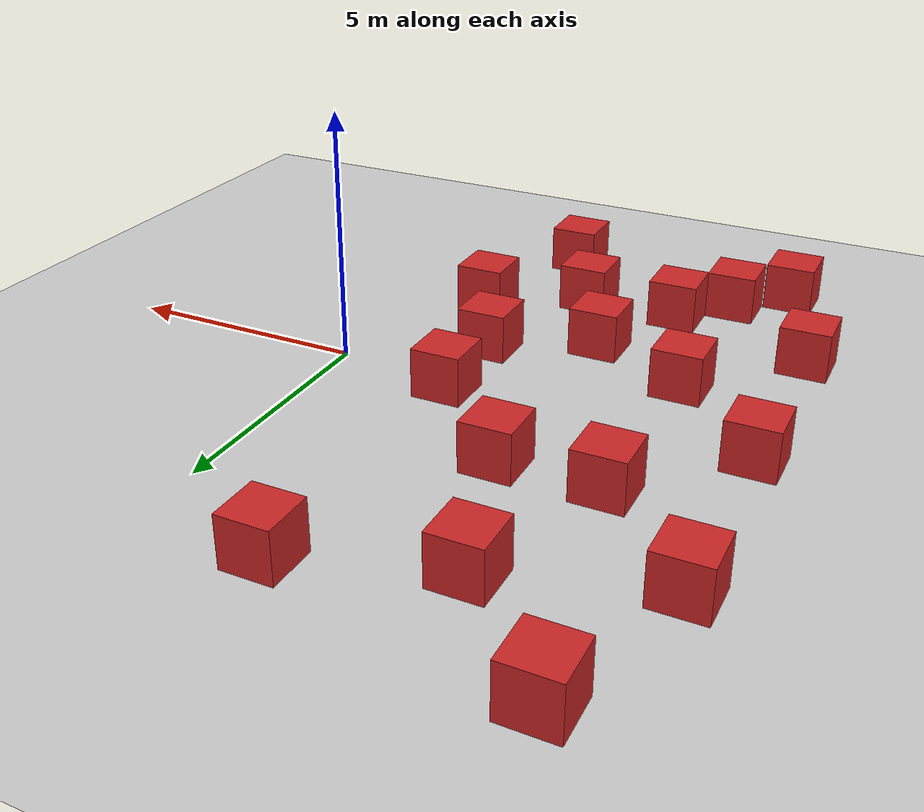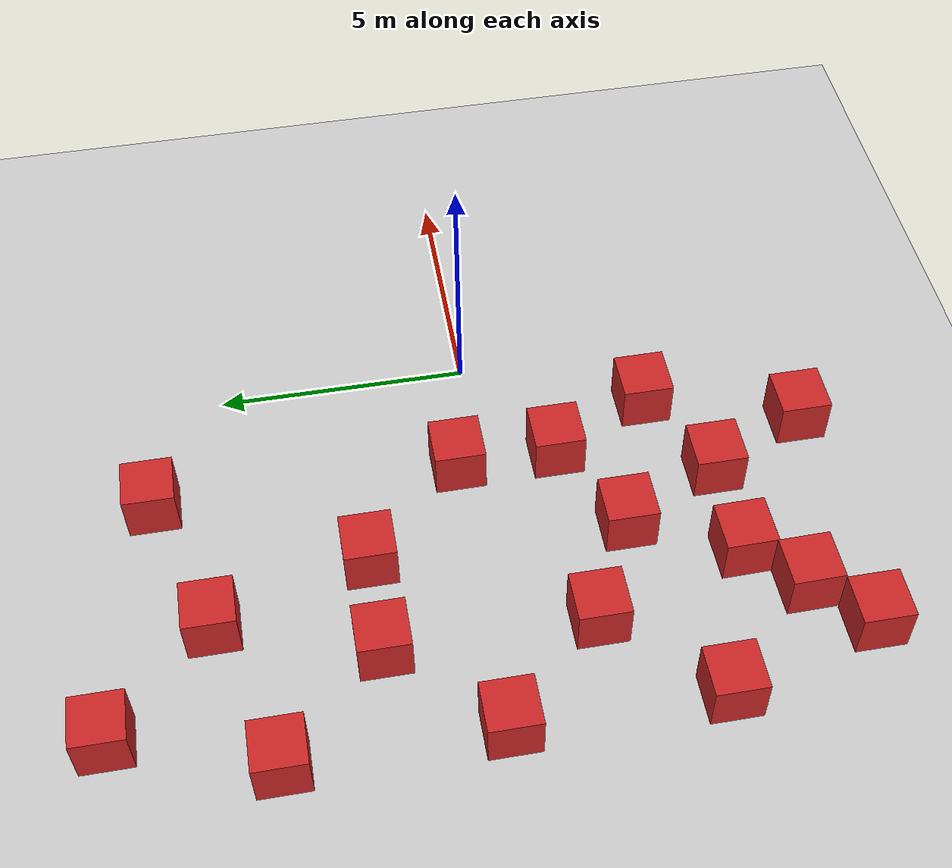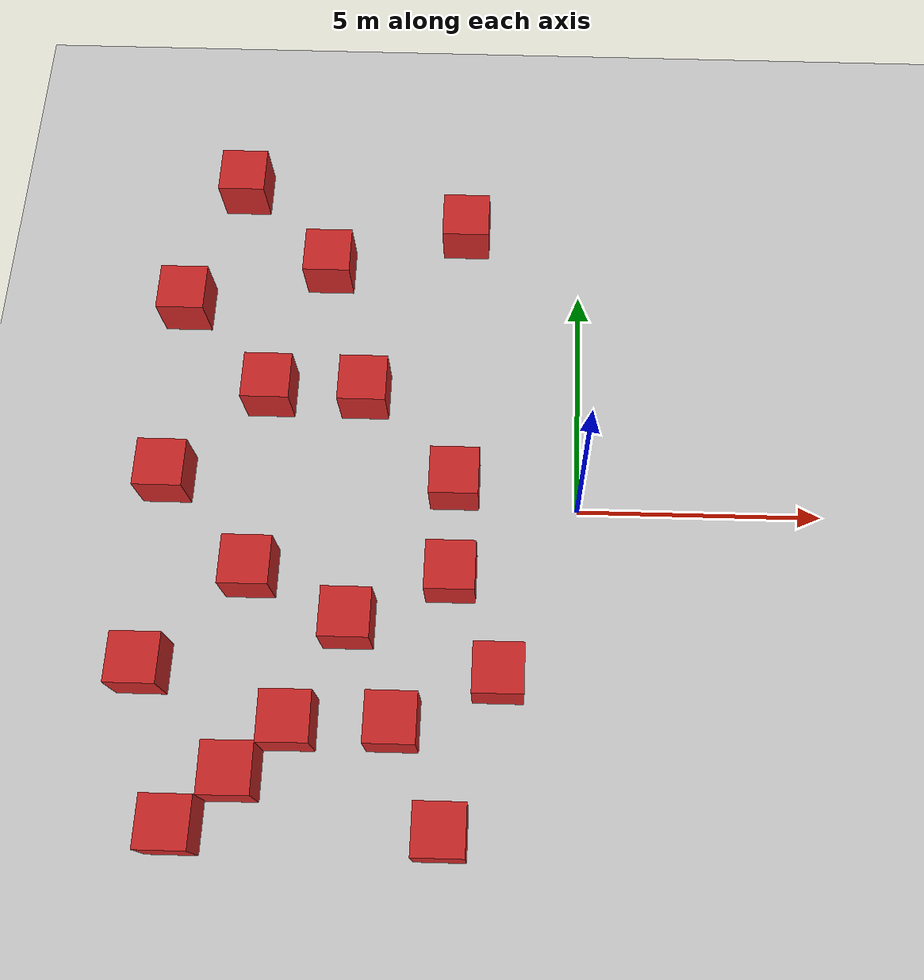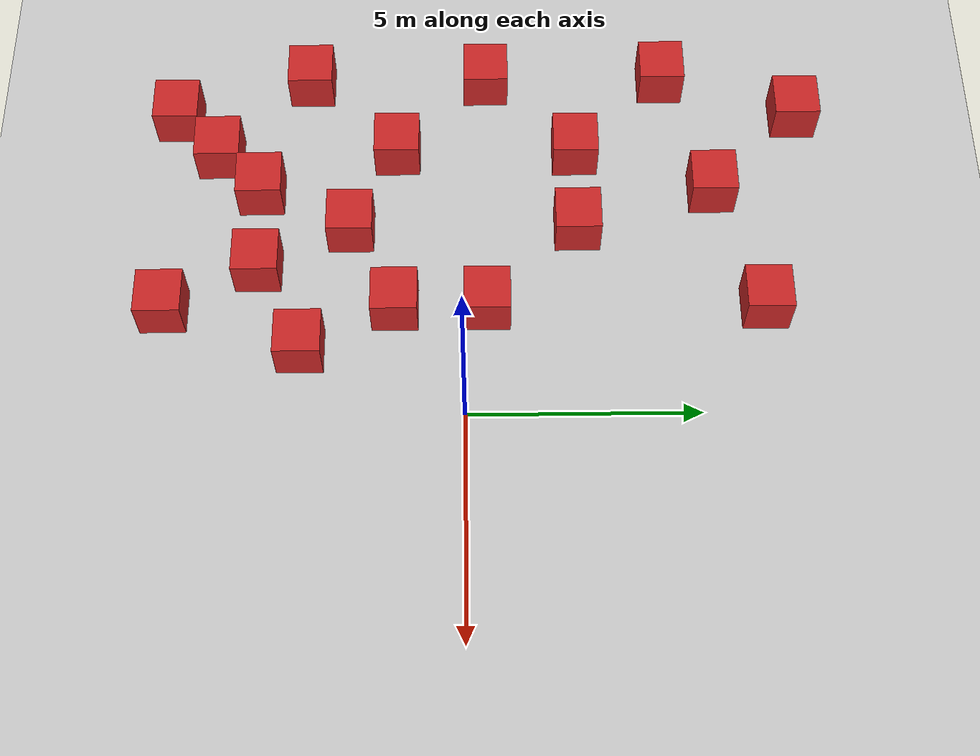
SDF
<sdf version="1.7">
 <world name="default">
  <model name="ground_plane">
   <static>1</static>
   <link name="link">
    <collision name="collision">
     <geometry><plane><normal>0 0 1</normal><size>100 100</size></plane></geometry>
     <surface><friction><ode><mu>100</mu><mu2>50</mu2></ode></friction></surface>
    </collision>
    <visual name="visual">
     <cast_shadows>0</cast_shadows>
     <geometry><plane><normal>0 0 1</normal><size>100 100</size></plane></geometry>
     <material>
      <script><uri>file://media/materials/scripts/gazebo.material</uri><name>Gazebo/Grey</name></script>
     </material>
    </visual>
   </link>
  </model>
  <model name="unit_box_red_0_clone_10">
   <link name="link">
    <inertial>
     <mass>1</mass>
     <inertia>
      <ixx>0.166667</ixx>
      <ixy>0</ixy>
      <ixz>0</ixz>
      <iyy>0.166667</iyy>
      <iyz>0</iyz>
      <izz>0.166667</izz>
     </inertia>
    </inertial>
    <visual name="visual">
     <geometry><box><size>1 1 1</size></box></geometry>
     <material>
      <script><name>Gazebo/Red</name><uri>file://media/materials/scripts/gazebo.material</uri></script>
      <shader type="pixel"><normal_map>__default__</normal_map></shader>
      <ambient>1 0 0 1</ambient>
      <diffuse>1 0 0 1</diffuse>
      <specular>1 0 0 1</specular>
      <emissive>1 0 0 1</emissive>
     </material>
    </visual>
    <collision name="collision">
     <geometry><box><size>1 1 1</size></box></geometry>
     <surface>
      <friction>
       <ode><mu>1</mu><mu2>1</mu2><fdir1>0 0 0</fdir1><slip1>0</slip1><slip2>0</slip2></ode>
       <torsional>
        <coefficient>1</coefficient>
        <patch_radius>0</patch_radius>
        <surface_radius>0</surface_radius>
        <use_patch_radius>1</use_patch_radius>
        <ode><slip>0</slip></ode>
       </torsional>
      </friction>
      <bounce><restitution_coefficient>0</restitution_coefficient><threshold>1e+06</threshold></bounce>
      <contact>
       <collide_without_contact>0</collide_without_contact>
       <collide_without_contact_bitmask>1</collide_without_contact_bitmask>
       <collide_bitmask>1</collide_bitmask>
       <ode>
        <soft_cfm>0</soft_cfm>
        <soft_erp>0.2</soft_erp>
        <kp>1e+13</kp>
        <kd>1</kd>
        <max_vel>0.01</max_vel>
        <min_depth>0</min_depth>
       </ode>
       <bullet>
        <split_impulse>1</split_impulse>
        <split_impulse_penetration_threshold>-0.01</split_impulse_penetration_threshold>
        <soft_cfm>0</soft_cfm>
        <soft_erp>0.2</soft_erp>
        <kp>1e+13</kp>
        <kd>1</kd>
       </bullet>
      </contact>
     </surface>
    </collision>
   </link>
   <static>0</static>
   <pose>-2.52511 0.481594 0.499995 -1e-05 0 0.000645</pose>
  </model>
  <model name="unit_box_red_0_clone_11">
   <link name="link">
    <inertial>
     <mass>1</mass>
     <inertia>
      <ixx>0.166667</ixx>
      <ixy>0</ixy>
      <ixz>0</ixz>
      <iyy>0.166667</iyy>
      <iyz>0</iyz>
      <izz>0.166667</izz>
     </inertia>
    </inertial>
    <visual name="visual">
     <geometry><box><size>1 1 1</size></box></geometry>
     <material>
      <script><name>Gazebo/Red</name><uri>file://media/materials/scripts/gazebo.material</uri></script>
      <shader type="pixel"><normal_map>__default__</normal_map></shader>
      <ambient>1 0 0 1</ambient>
      <diffuse>1 0 0 1</diffuse>
      <specular>1 0 0 1</specular>
      <emissive>1 0 0 1</emissive>
     </material>
    </visual>
    <collision name="collision">
     <geometry><box><size>1 1 1</size></box></geometry>
     <surface>
      <friction>
       <ode><mu>1</mu><mu2>1</mu2><fdir1>0 0 0</fdir1><slip1>0</slip1><slip2>0</slip2></ode>
       <torsional>
        <coefficient>1</coefficient>
        <patch_radius>0</patch_radius>
        <surface_radius>0</surface_radius>
        <use_patch_radius>1</use_patch_radius>
        <ode><slip>0</slip></ode>
       </torsional>
      </friction>
      <bounce><restitution_coefficient>0</restitution_coefficient><threshold>1e+06</threshold></bounce>
      <contact>
       <collide_without_contact>0</collide_without_contact>
       <collide_without_contact_bitmask>1</collide_without_contact_bitmask>
       <collide_bitmask>1</collide_bitmask>
       <ode>
        <soft_cfm>0</soft_cfm>
        <soft_erp>0.2</soft_erp>
        <kp>1e+13</kp>
        <kd>1</kd>
        <max_vel>0.01</max_vel>
        <min_depth>0</min_depth>
       </ode>
       <bullet>
        <split_impulse>1</split_impulse>
        <split_impulse_penetration_threshold>-0.01</split_impulse_penetration_threshold>
        <soft_cfm>0</soft_cfm>
        <soft_erp>0.2</soft_erp>
        <kp>1e+13</kp>
        <kd>1</kd>
       </bullet>
      </contact>
     </surface>
    </collision>
   </link>
   <static>0</static>
   <pose>-2.52086 -1.50531 0.499995 0 1e-05 0</pose>
  </model>
  <model name="unit_box_red_0_clone_12">
   <link name="link">
    <inertial>
     <mass>1</mass>
     <inertia>
      <ixx>0.166667</ixx>
      <ixy>0</ixy>
      <ixz>0</ixz>
      <iyy>0.166667</iyy>
      <iyz>0</iyz>
      <izz>0.166667</izz>
     </inertia>
    </inertial>
    <visual name="visual">
     <geometry><box><size>1 1 1</size></box></geometry>
     <material>
      <script><name>Gazebo/Red</name><uri>file://media/materials/scripts/gazebo.material</uri></script>
      <shader type="pixel"><normal_map>__default__</normal_map></shader>
      <ambient>1 0 0 1</ambient>
      <diffuse>1 0 0 1</diffuse>
      <specular>1 0 0 1</specular>
      <emissive>1 0 0 1</emissive>
     </material>
    </visual>
    <collision name="collision">
     <geometry><box><size>1 1 1</size></box></geometry>
     <surface>
      <friction>
       <ode><mu>1</mu><mu2>1</mu2><fdir1>0 0 0</fdir1><slip1>0</slip1><slip2>0</slip2></ode>
       <torsional>
        <coefficient>1</coefficient>
        <patch_radius>0</patch_radius>
        <surface_radius>0</surface_radius>
        <use_patch_radius>1</use_patch_radius>
        <ode><slip>0</slip></ode>
       </torsional>
      </friction>
      <bounce><restitution_coefficient>0</restitution_coefficient><threshold>1e+06</threshold></bounce>
      <contact>
       <collide_without_contact>0</collide_without_contact>
       <collide_without_contact_bitmask>1</collide_without_contact_bitmask>
       <collide_bitmask>1</collide_bitmask>
       <ode>
        <soft_cfm>0</soft_cfm>
        <soft_erp>0.2</soft_erp>
        <kp>1e+13</kp>
        <kd>1</kd>
        <max_vel>0.01</max_vel>
        <min_depth>0</min_depth>
       </ode>
       <bullet>
        <split_impulse>1</split_impulse>
        <split_impulse_penetration_threshold>-0.01</split_impulse_penetration_threshold>
        <soft_cfm>0</soft_cfm>
        <soft_erp>0.2</soft_erp>
        <kp>1e+13</kp>
        <kd>1</kd>
       </bullet>
      </contact>
     </surface>
    </collision>
   </link>
   <static>0</static>
   <pose>-1.51768 -3.51166 0.499995 0 1e-05 0</pose>
  </model>
  <model name="unit_box_red_0_clone_16_clone_0">
   <link name="link">
    <inertial>
     <mass>1</mass>
     <inertia>
      <ixx>0.166667</ixx>
      <ixy>0</ixy>
      <ixz>0</ixz>
      <iyy>0.166667</iyy>
      <iyz>0</iyz>
      <izz>0.166667</izz>
     </inertia>
    </inertial>
    <visual name="visual">
     <geometry><box><size>1 1 1</size></box></geometry>
     <material>
      <script><name>Gazebo/Red</name><uri>file://media/materials/scripts/gazebo.material</uri></script>
      <shader type="pixel"><normal_map>__default__</normal_map></shader>
      <ambient>1 0 0 1</ambient>
      <diffuse>1 0 0 1</diffuse>
      <specular>1 0 0 1</specular>
      <emissive>1 0 0 1</emissive>
     </material>
    </visual>
    <collision name="collision">
     <geometry><box><size>1 1 1</size></box></geometry>
     <surface>
      <friction>
       <ode><mu>1</mu><mu2>1</mu2><fdir1>0 0 0</fdir1><slip1>0</slip1><slip2>0</slip2></ode>
       <torsional>
        <coefficient>1</coefficient>
        <patch_radius>0</patch_radius>
        <surface_radius>0</surface_radius>
        <use_patch_radius>1</use_patch_radius>
        <ode><slip>0</slip></ode>
       </torsional>
      </friction>
      <bounce><restitution_coefficient>0</restitution_coefficient><threshold>1e+06</threshold></bounce>
      <contact>
       <collide_without_contact>0</collide_without_contact>
       <collide_without_contact_bitmask>1</collide_without_contact_bitmask>
       <collide_bitmask>1</collide_bitmask>
       <ode>
        <soft_cfm>0</soft_cfm>
        <soft_erp>0.2</soft_erp>
        <kp>1e+13</kp>
        <kd>1</kd>
        <max_vel>0.01</max_vel>
        <min_depth>0</min_depth>
       </ode>
       <bullet>
        <split_impulse>1</split_impulse>
        <split_impulse_penetration_threshold>-0.01</split_impulse_penetration_threshold>
        <soft_cfm>0</soft_cfm>
        <soft_erp>0.2</soft_erp>
        <kp>1e+13</kp>
        <kd>1</kd>
       </bullet>
      </contact>
     </surface>
    </collision>
   </link>
   <static>0</static>
   <pose>-2.50935 6.48435 0.499995 0 1e-05 0</pose>
  </model>
  <model name="unit_box_red_0_clone_16_clone_1">
   <link name="link">
    <inertial>
     <mass>1</mass>
     <inertia>
      <ixx>0.166667</ixx>
      <ixy>0</ixy>
      <ixz>0</ixz>
      <iyy>0.166667</iyy>
      <iyz>0</iyz>
      <izz>0.166667</izz>
     </inertia>
    </inertial>
    <visual name="visual">
     <geometry><box><size>1 1 1</size></box></geometry>
     <material>
      <script><name>Gazebo/Red</name><uri>file://media/materials/scripts/gazebo.material</uri></script>
      <shader type="pixel"><normal_map>__default__</normal_map></shader>
      <ambient>1 0 0 1</ambient>
      <diffuse>1 0 0 1</diffuse>
      <specular>1 0 0 1</specular>
      <emissive>1 0 0 1</emissive>
     </material>
    </visual>
    <collision name="collision">
     <geometry><box><size>1 1 1</size></box></geometry>
     <surface>
      <friction>
       <ode><mu>1</mu><mu2>1</mu2><fdir1>0 0 0</fdir1><slip1>0</slip1><slip2>0</slip2></ode>
       <torsional>
        <coefficient>1</coefficient>
        <patch_radius>0</patch_radius>
        <surface_radius>0</surface_radius>
        <use_patch_radius>1</use_patch_radius>
        <ode><slip>0</slip></ode>
       </torsional>
      </friction>
      <bounce><restitution_coefficient>0</restitution_coefficient><threshold>1e+06</threshold></bounce>
      <contact>
       <collide_without_contact>0</collide_without_contact>
       <collide_without_contact_bitmask>1</collide_without_contact_bitmask>
       <collide_bitmask>1</collide_bitmask>
       <ode>
        <soft_cfm>0</soft_cfm>
        <soft_erp>0.2</soft_erp>
        <kp>1e+13</kp>
        <kd>1</kd>
        <max_vel>0.01</max_vel>
        <min_depth>0</min_depth>
       </ode>
       <bullet>
        <split_impulse>1</split_impulse>
        <split_impulse_penetration_threshold>-0.01</split_impulse_penetration_threshold>
        <soft_cfm>0</soft_cfm>
        <soft_erp>0.2</soft_erp>
        <kp>1e+13</kp>
        <kd>1</kd>
       </bullet>
      </contact>
     </surface>
    </collision>
   </link>
   <static>0</static>
   <pose>-4.50697 2.48913 0.499995 0 1e-05 0</pose>
  </model>
  <model name="unit_box_red_0_clone_16_clone_2">
   <link name="link">
    <inertial>
     <mass>1</mass>
     <inertia>
      <ixx>0.166667</ixx>
      <ixy>0</ixy>
      <ixz>0</ixz>
      <iyy>0.166667</iyy>
      <iyz>0</iyz>
      <izz>0.166667</izz>
     </inertia>
    </inertial>
    <visual name="visual">
     <geometry><box><size>1 1 1</size></box></geometry>
     <material>
      <script><name>Gazebo/Red</name><uri>file://media/materials/scripts/gazebo.material</uri></script>
      <shader type="pixel"><normal_map>__default__</normal_map></shader>
      <ambient>1 0 0 1</ambient>
      <diffuse>1 0 0 1</diffuse>
      <specular>1 0 0 1</specular>
      <emissive>1 0 0 1</emissive>
     </material>
    </visual>
    <collision name="collision">
     <geometry><box><size>1 1 1</size></box></geometry>
     <surface>
      <friction>
       <ode><mu>1</mu><mu2>1</mu2><fdir1>0 0 0</fdir1><slip1>0</slip1><slip2>0</slip2></ode>
       <torsional>
        <coefficient>1</coefficient>
        <patch_radius>0</patch_radius>
        <surface_radius>0</surface_radius>
        <use_patch_radius>1</use_patch_radius>
        <ode><slip>0</slip></ode>
       </torsional>
      </friction>
      <bounce><restitution_coefficient>0</restitution_coefficient><threshold>1e+06</threshold></bounce>
      <contact>
       <collide_without_contact>0</collide_without_contact>
       <collide_without_contact_bitmask>1</collide_without_contact_bitmask>
       <collide_bitmask>1</collide_bitmask>
       <ode>
        <soft_cfm>0</soft_cfm>
        <soft_erp>0.2</soft_erp>
        <kp>1e+13</kp>
        <kd>1</kd>
        <max_vel>0.01</max_vel>
        <min_depth>0</min_depth>
       </ode>
       <bullet>
        <split_impulse>1</split_impulse>
        <split_impulse_penetration_threshold>-0.01</split_impulse_penetration_threshold>
        <soft_cfm>0</soft_cfm>
        <soft_erp>0.2</soft_erp>
        <kp>1e+13</kp>
        <kd>1</kd>
       </bullet>
      </contact>
     </surface>
    </collision>
   </link>
   <static>0</static>
   <pose>-4.50697 -2.5049 0.499995 0 1e-05 0</pose>
  </model>
  <model name="unit_box_red_0_clone_16_clone_12">
   <link name="link">
    <inertial>
     <mass>1</mass>
     <inertia>
      <ixx>0.166667</ixx>
      <ixy>0</ixy>
      <ixz>0</ixz>
      <iyy>0.166667</iyy>
      <iyz>0</iyz>
      <izz>0.166667</izz>
     </inertia>
    </inertial>
    <visual name="visual">
     <geometry><box><size>1 1 1</size></box></geometry>
     <material>
      <script><name>Gazebo/Red</name><uri>file://media/materials/scripts/gazebo.material</uri></script>
      <shader type="pixel"><normal_map>__default__</normal_map></shader>
      <ambient>1 0 0 1</ambient>
      <diffuse>1 0 0 1</diffuse>
      <specular>1 0 0 1</specular>
      <emissive>1 0 0 1</emissive>
     </material>
    </visual>
    <collision name="collision">
     <geometry><box><size>1 1 1</size></box></geometry>
     <surface>
      <friction>
       <ode><mu>1</mu><mu2>1</mu2><fdir1>0 0 0</fdir1><slip1>0</slip1><slip2>0</slip2></ode>
       <torsional>
        <coefficient>1</coefficient>
        <patch_radius>0</patch_radius>
        <surface_radius>0</surface_radius>
        <use_patch_radius>1</use_patch_radius>
        <ode><slip>0</slip></ode>
       </torsional>
      </friction>
      <bounce><restitution_coefficient>0</restitution_coefficient><threshold>1e+06</threshold></bounce>
      <contact>
       <collide_without_contact>0</collide_without_contact>
       <collide_without_contact_bitmask>1</collide_without_contact_bitmask>
       <collide_bitmask>1</collide_bitmask>
       <ode>
        <soft_cfm>0</soft_cfm>
        <soft_erp>0.2</soft_erp>
        <kp>1e+13</kp>
        <kd>1</kd>
        <max_vel>0.01</max_vel>
        <min_depth>0</min_depth>
       </ode>
       <bullet>
        <split_impulse>1</split_impulse>
        <split_impulse_penetration_threshold>-0.01</split_impulse_penetration_threshold>
        <soft_cfm>0</soft_cfm>
        <soft_erp>0.2</soft_erp>
        <kp>1e+13</kp>
        <kd>1</kd>
       </bullet>
      </contact>
     </surface>
    </collision>
   </link>
   <static>0</static>
   <pose>-2.50936 -6.50013 0.499995 0 1e-05 0</pose>
  </model>
  <model name="unit_box_red_0_clone_16_clone_13">
   <link name="link">
    <inertial>
     <mass>1</mass>
     <inertia>
      <ixx>0.166667</ixx>
      <ixy>0</ixy>
      <ixz>0</ixz>
      <iyy>0.166667</iyy>
      <iyz>0</iyz>
      <izz>0.166667</izz>
     </inertia>
    </inertial>
    <visual name="visual">
     <geometry><box><size>1 1 1</size></box></geometry>
     <material>
      <script><name>Gazebo/Red</name><uri>file://media/materials/scripts/gazebo.material</uri></script>
      <shader type="pixel"><normal_map>__default__</normal_map></shader>
      <ambient>1 0 0 1</ambient>
      <diffuse>1 0 0 1</diffuse>
      <specular>1 0 0 1</specular>
      <emissive>1 0 0 1</emissive>
     </material>
    </visual>
    <collision name="collision">
     <geometry><box><size>1 1 1</size></box></geometry>
     <surface>
      <friction>
       <ode><mu>1</mu><mu2>1</mu2><fdir1>0 0 0</fdir1><slip1>0</slip1><slip2>0</slip2></ode>
       <torsional>
        <coefficient>1</coefficient>
        <patch_radius>0</patch_radius>
        <surface_radius>0</surface_radius>
        <use_patch_radius>1</use_patch_radius>
        <ode><slip>0</slip></ode>
       </torsional>
      </friction>
      <bounce><restitution_coefficient>0</restitution_coefficient><threshold>1e+06</threshold></bounce>
      <contact>
       <collide_without_contact>0</collide_without_contact>
       <collide_without_contact_bitmask>1</collide_without_contact_bitmask>
       <collide_bitmask>1</collide_bitmask>
       <ode>
        <soft_cfm>0</soft_cfm>
        <soft_erp>0.2</soft_erp>
        <kp>1e+13</kp>
        <kd>1</kd>
        <max_vel>0.01</max_vel>
        <min_depth>0</min_depth>
       </ode>
       <bullet>
        <split_impulse>1</split_impulse>
        <split_impulse_penetration_threshold>-0.01</split_impulse_penetration_threshold>
        <soft_cfm>0</soft_cfm>
        <soft_erp>0.2</soft_erp>
        <kp>1e+13</kp>
        <kd>1</kd>
       </bullet>
      </contact>
     </surface>
    </collision>
   </link>
   <static>0</static>
   <pose>-6.48143 -5.50789 0.499995 -0 -1e-05 0.0132</pose>
  </model>
  <model name="unit_box_red_0_clone_16_clone_14">
   <link name="link">
    <inertial>
     <mass>1</mass>
     <inertia>
      <ixx>0.166667</ixx>
      <ixy>0</ixy>
      <ixz>0</ixz>
      <iyy>0.166667</iyy>
      <iyz>0</iyz>
      <izz>0.166667</izz>
     </inertia>
    </inertial>
    <visual name="visual">
     <geometry><box><size>1 1 1</size></box></geometry>
     <material>
      <script><name>Gazebo/Red</name><uri>file://media/materials/scripts/gazebo.material</uri></script>
      <shader type="pixel"><normal_map>__default__</normal_map></shader>
      <ambient>1 0 0 1</ambient>
      <diffuse>1 0 0 1</diffuse>
      <specular>1 0 0 1</specular>
      <emissive>1 0 0 1</emissive>
     </material>
    </visual>
    <collision name="collision">
     <geometry><box><size>1 1 1</size></box></geometry>
     <surface>
      <friction>
       <ode><mu>1</mu><mu2>1</mu2><fdir1>0 0 0</fdir1><slip1>0</slip1><slip2>0</slip2></ode>
       <torsional>
        <coefficient>1</coefficient>
        <patch_radius>0</patch_radius>
        <surface_radius>0</surface_radius>
        <use_patch_radius>1</use_patch_radius>
        <ode><slip>0</slip></ode>
       </torsional>
      </friction>
      <bounce><restitution_coefficient>0</restitution_coefficient><threshold>1e+06</threshold></bounce>
      <contact>
       <collide_without_contact>0</collide_without_contact>
       <collide_without_contact_bitmask>1</collide_without_contact_bitmask>
       <collide_bitmask>1</collide_bitmask>
       <ode>
        <soft_cfm>0</soft_cfm>
        <soft_erp>0.2</soft_erp>
        <kp>1e+13</kp>
        <kd>1</kd>
        <max_vel>0.01</max_vel>
        <min_depth>0</min_depth>
       </ode>
       <bullet>
        <split_impulse>1</split_impulse>
        <split_impulse_penetration_threshold>-0.01</split_impulse_penetration_threshold>
        <soft_cfm>0</soft_cfm>
        <soft_erp>0.2</soft_erp>
        <kp>1e+13</kp>
        <kd>1</kd>
       </bullet>
      </contact>
     </surface>
    </collision>
   </link>
   <static>0</static>
   <pose>-6.53902 -1.5061 0.499995 0 1e-05 0</pose>
  </model>
  <model name="unit_box_red_0_clone_16_clone_15">
   <link name="link">
    <inertial>
     <mass>1</mass>
     <inertia>
      <ixx>0.166667</ixx>
      <ixy>0</ixy>
      <ixz>0</ixz>
      <iyy>0.166667</iyy>
      <iyz>0</iyz>
      <izz>0.166667</izz>
     </inertia>
    </inertial>
    <visual name="visual">
     <geometry><box><size>1 1 1</size></box></geometry>
     <material>
      <script><name>Gazebo/Red</name><uri>file://media/materials/scripts/gazebo.material</uri></script>
      <shader type="pixel"><normal_map>__default__</normal_map></shader>
      <ambient>1 0 0 1</ambient>
      <diffuse>1 0 0 1</diffuse>
      <specular>1 0 0 1</specular>
      <emissive>1 0 0 1</emissive>
     </material>
    </visual>
    <collision name="collision">
     <geometry><box><size>1 1 1</size></box></geometry>
     <surface>
      <friction>
       <ode><mu>1</mu><mu2>1</mu2><fdir1>0 0 0</fdir1><slip1>0</slip1><slip2>0</slip2></ode>
       <torsional>
        <coefficient>1</coefficient>
        <patch_radius>0</patch_radius>
        <surface_radius>0</surface_radius>
        <use_patch_radius>1</use_patch_radius>
        <ode><slip>0</slip></ode>
       </torsional>
      </friction>
      <bounce><restitution_coefficient>0</restitution_coefficient><threshold>1e+06</threshold></bounce>
      <contact>
       <collide_without_contact>0</collide_without_contact>
       <collide_without_contact_bitmask>1</collide_without_contact_bitmask>
       <collide_bitmask>1</collide_bitmask>
       <ode>
        <soft_cfm>0</soft_cfm>
        <soft_erp>0.2</soft_erp>
        <kp>1e+13</kp>
        <kd>1</kd>
        <max_vel>0.01</max_vel>
        <min_depth>0</min_depth>
       </ode>
       <bullet>
        <split_impulse>1</split_impulse>
        <split_impulse_penetration_threshold>-0.01</split_impulse_penetration_threshold>
        <soft_cfm>0</soft_cfm>
        <soft_erp>0.2</soft_erp>
        <kp>1e+13</kp>
        <kd>1</kd>
       </bullet>
      </contact>
     </surface>
    </collision>
   </link>
   <static>0</static>
   <pose>-6.50458 2.48913 0.499995 0 1e-05 0</pose>
  </model>
  <model name="unit_box_red_0_clone_16_clone_16">
   <link name="link">
    <inertial>
     <mass>1</mass>
     <inertia>
      <ixx>0.166667</ixx>
      <ixy>0</ixy>
      <ixz>0</ixz>
      <iyy>0.166667</iyy>
      <iyz>0</iyz>
      <izz>0.166667</izz>
     </inertia>
    </inertial>
    <visual name="visual">
     <geometry><box><size>1 1 1</size></box></geometry>
     <material>
      <script><name>Gazebo/Red</name><uri>file://media/materials/scripts/gazebo.material</uri></script>
      <shader type="pixel"><normal_map>__default__</normal_map></shader>
      <ambient>1 0 0 1</ambient>
      <diffuse>1 0 0 1</diffuse>
      <specular>1 0 0 1</specular>
      <emissive>1 0 0 1</emissive>
     </material>
    </visual>
    <collision name="collision">
     <geometry><box><size>1 1 1</size></box></geometry>
     <surface>
      <friction>
       <ode><mu>1</mu><mu2>1</mu2><fdir1>0 0 0</fdir1><slip1>0</slip1><slip2>0</slip2></ode>
       <torsional>
        <coefficient>1</coefficient>
        <patch_radius>0</patch_radius>
        <surface_radius>0</surface_radius>
        <use_patch_radius>1</use_patch_radius>
        <ode><slip>0</slip></ode>
       </torsional>
      </friction>
      <bounce><restitution_coefficient>0</restitution_coefficient><threshold>1e+06</threshold></bounce>
      <contact>
       <collide_without_contact>0</collide_without_contact>
       <collide_without_contact_bitmask>1</collide_without_contact_bitmask>
       <collide_bitmask>1</collide_bitmask>
       <ode>
        <soft_cfm>0</soft_cfm>
        <soft_erp>0.2</soft_erp>
        <kp>1e+13</kp>
        <kd>1</kd>
        <max_vel>0.01</max_vel>
        <min_depth>0</min_depth>
       </ode>
       <bullet>
        <split_impulse>1</split_impulse>
        <split_impulse_penetration_threshold>-0.01</split_impulse_penetration_threshold>
        <soft_cfm>0</soft_cfm>
        <soft_erp>0.2</soft_erp>
        <kp>1e+13</kp>
        <kd>1</kd>
       </bullet>
      </contact>
     </surface>
    </collision>
   </link>
   <static>0</static>
   <pose>-5.47133 5.51999 0.499995 0 1e-05 0</pose>
  </model>
  <model name="unit_box_red_0_clone_16_clone_17">
   <link name="link">
    <inertial>
     <mass>1</mass>
     <inertia>
      <ixx>0.166667</ixx>
      <ixy>0</ixy>
      <ixz>0</ixz>
      <iyy>0.166667</iyy>
      <iyz>0</iyz>
      <izz>0.166667</izz>
     </inertia>
    </inertial>
    <visual name="visual">
     <geometry><box><size>1 1 1</size></box></geometry>
     <material>
      <script><name>Gazebo/Red</name><uri>file://media/materials/scripts/gazebo.material</uri></script>
      <shader type="pixel"><normal_map>__default__</normal_map></shader>
      <ambient>1 0 0 1</ambient>
      <diffuse>1 0 0 1</diffuse>
      <specular>1 0 0 1</specular>
      <emissive>1 0 0 1</emissive>
     </material>
    </visual>
    <collision name="collision">
     <geometry><box><size>1 1 1</size></box></geometry>
     <surface>
      <friction>
       <ode><mu>1</mu><mu2>1</mu2><fdir1>0 0 0</fdir1><slip1>0</slip1><slip2>0</slip2></ode>
       <torsional>
        <coefficient>1</coefficient>
        <patch_radius>0</patch_radius>
        <surface_radius>0</surface_radius>
        <use_patch_radius>1</use_patch_radius>
        <ode><slip>0</slip></ode>
       </torsional>
      </friction>
      <bounce><restitution_coefficient>0</restitution_coefficient><threshold>1e+06</threshold></bounce>
      <contact>
       <collide_without_contact>0</collide_without_contact>
       <collide_without_contact_bitmask>1</collide_without_contact_bitmask>
       <collide_bitmask>1</collide_bitmask>
       <ode>
        <soft_cfm>0</soft_cfm>
        <soft_erp>0.2</soft_erp>
        <kp>1e+13</kp>
        <kd>1</kd>
        <max_vel>0.01</max_vel>
        <min_depth>0</min_depth>
       </ode>
       <bullet>
        <split_impulse>1</split_impulse>
        <split_impulse_penetration_threshold>-0.01</split_impulse_penetration_threshold>
        <soft_cfm>0</soft_cfm>
        <soft_erp>0.2</soft_erp>
        <kp>1e+13</kp>
        <kd>1</kd>
       </bullet>
      </contact>
     </surface>
    </collision>
   </link>
   <static>0</static>
   <pose>-7.50338 7.5176 0.499995 0 1e-05 0</pose>
  </model>
  <model name="unit_box_red_0_clone_16_clone_19">
   <link name="link">
    <inertial>
     <mass>1</mass>
     <inertia>
      <ixx>0.166667</ixx>
      <ixy>0</ixy>
      <ixz>0</ixz>
      <iyy>0.166667</iyy>
      <iyz>0</iyz>
      <izz>0.166667</izz>
     </inertia>
    </inertial>
    <visual name="visual">
     <geometry><box><size>1 1 1</size></box></geometry>
     <material>
      <script><name>Gazebo/Red</name><uri>file://media/materials/scripts/gazebo.material</uri></script>
      <shader type="pixel"><normal_map>__default__</normal_map></shader>
      <ambient>1 0 0 1</ambient>
      <diffuse>1 0 0 1</diffuse>
      <specular>1 0 0 1</specular>
      <emissive>1 0 0 1</emissive>
     </material>
    </visual>
    <collision name="collision">
     <geometry><box><size>1 1 1</size></box></geometry>
     <surface>
      <friction>
       <ode><mu>1</mu><mu2>1</mu2><fdir1>0 0 0</fdir1><slip1>0</slip1><slip2>0</slip2></ode>
       <torsional>
        <coefficient>1</coefficient>
        <patch_radius>0</patch_radius>
        <surface_radius>0</surface_radius>
        <use_patch_radius>1</use_patch_radius>
        <ode><slip>0</slip></ode>
       </torsional>
      </friction>
      <bounce><restitution_coefficient>0</restitution_coefficient><threshold>1e+06</threshold></bounce>
      <contact>
       <collide_without_contact>0</collide_without_contact>
       <collide_without_contact_bitmask>1</collide_without_contact_bitmask>
       <collide_bitmask>1</collide_bitmask>
       <ode>
        <soft_cfm>0</soft_cfm>
        <soft_erp>0.2</soft_erp>
        <kp>1e+13</kp>
        <kd>1</kd>
        <max_vel>0.01</max_vel>
        <min_depth>0</min_depth>
       </ode>
       <bullet>
        <split_impulse>1</split_impulse>
        <split_impulse_penetration_threshold>-0.01</split_impulse_penetration_threshold>
        <soft_cfm>0</soft_cfm>
        <soft_erp>0.2</soft_erp>
        <kp>1e+13</kp>
        <kd>1</kd>
       </bullet>
      </contact>
     </surface>
    </collision>
   </link>
   <static>0</static>
   <pose>-3.50816 -4.50252 0.499995 0 1e-05 0</pose>
  </model>
  <model name="unit_box_red_0_clone_16_clone_20">
   <link name="link">
    <inertial>
     <mass>1</mass>
     <inertia>
      <ixx>0.166667</ixx>
      <ixy>0</ixy>
      <ixz>0</ixz>
      <iyy>0.166667</iyy>
      <iyz>0</iyz>
      <izz>0.166667</izz>
     </inertia>
    </inertial>
    <visual name="visual">
     <geometry><box><size>1 1 1</size></box></geometry>
     <material>
      <script><name>Gazebo/Red</name><uri>file://media/materials/scripts/gazebo.material</uri></script>
      <shader type="pixel"><normal_map>__default__</normal_map></shader>
      <ambient>1 0 0 1</ambient>
      <diffuse>1 0 0 1</diffuse>
      <specular>1 0 0 1</specular>
      <emissive>1 0 0 1</emissive>
     </material>
    </visual>
    <collision name="collision">
     <geometry><box><size>1 1 1</size></box></geometry>
     <surface>
      <friction>
       <ode><mu>1</mu><mu2>1</mu2><fdir1>0 0 0</fdir1><slip1>0</slip1><slip2>0</slip2></ode>
       <torsional>
        <coefficient>1</coefficient>
        <patch_radius>0</patch_radius>
        <surface_radius>0</surface_radius>
        <use_patch_radius>1</use_patch_radius>
        <ode><slip>0</slip></ode>
       </torsional>
      </friction>
      <bounce><restitution_coefficient>0</restitution_coefficient><threshold>1e+06</threshold></bounce>
      <contact>
       <collide_without_contact>0</collide_without_contact>
       <collide_without_contact_bitmask>1</collide_without_contact_bitmask>
       <collide_bitmask>1</collide_bitmask>
       <ode>
        <soft_cfm>0</soft_cfm>
        <soft_erp>0.2</soft_erp>
        <kp>1e+13</kp>
        <kd>1</kd>
        <max_vel>0.01</max_vel>
        <min_depth>0</min_depth>
       </ode>
       <bullet>
        <split_impulse>1</split_impulse>
        <split_impulse_penetration_threshold>-0.01</split_impulse_penetration_threshold>
        <soft_cfm>0</soft_cfm>
        <soft_erp>0.2</soft_erp>
        <kp>1e+13</kp>
        <kd>1</kd>
       </bullet>
      </contact>
     </surface>
    </collision>
   </link>
   <static>0</static>
   <pose>-5.49452 -4.53039 0.499995 1e-05 -0 0.014026</pose>
  </model>
  <model name="unit_box_red_0_clone_16_clone_21">
   <link name="link">
    <inertial>
     <mass>1</mass>
     <inertia>
      <ixx>0.166667</ixx>
      <ixy>0</ixy>
      <ixz>0</ixz>
      <iyy>0.166667</iyy>
      <iyz>0</iyz>
      <izz>0.166667</izz>
     </inertia>
    </inertial>
    <visual name="visual">
     <geometry><box><size>1 1 1</size></box></geometry>
     <material>
      <script><name>Gazebo/Red</name><uri>file://media/materials/scripts/gazebo.material</uri></script>
      <shader type="pixel"><normal_map>__default__</normal_map></shader>
      <ambient>1 0 0 1</ambient>
      <diffuse>1 0 0 1</diffuse>
      <specular>1 0 0 1</specular>
      <emissive>1 0 0 1</emissive>
     </material>
    </visual>
    <collision name="collision">
     <geometry><box><size>1 1 1</size></box></geometry>
     <surface>
      <friction>
       <ode><mu>1</mu><mu2>1</mu2><fdir1>0 0 0</fdir1><slip1>0</slip1><slip2>0</slip2></ode>
       <torsional>
        <coefficient>1</coefficient>
        <patch_radius>0</patch_radius>
        <surface_radius>0</surface_radius>
        <use_patch_radius>1</use_patch_radius>
        <ode><slip>0</slip></ode>
       </torsional>
      </friction>
      <bounce><restitution_coefficient>0</restitution_coefficient><threshold>1e+06</threshold></bounce>
      <contact>
       <collide_without_contact>0</collide_without_contact>
       <collide_without_contact_bitmask>1</collide_without_contact_bitmask>
       <collide_bitmask>1</collide_bitmask>
       <ode>
        <soft_cfm>0</soft_cfm>
        <soft_erp>0.2</soft_erp>
        <kp>1e+13</kp>
        <kd>1</kd>
        <max_vel>0.01</max_vel>
        <min_depth>0</min_depth>
       </ode>
       <bullet>
        <split_impulse>1</split_impulse>
        <split_impulse_penetration_threshold>-0.01</split_impulse_penetration_threshold>
        <soft_cfm>0</soft_cfm>
        <soft_erp>0.2</soft_erp>
        <kp>1e+13</kp>
        <kd>1</kd>
       </bullet>
      </contact>
     </surface>
    </collision>
   </link>
   <static>0</static>
   <pose>-7.5034 -6.50013 0.499995 0 1e-05 0</pose>
  </model>
  <model name="unit_box_red_0_clone_16_clone_22">
   <link name="link">
    <inertial>
     <mass>1</mass>
     <inertia>
      <ixx>0.166667</ixx>
      <ixy>0</ixy>
      <ixz>0</ixz>
      <iyy>0.166667</iyy>
      <iyz>0</iyz>
      <izz>0.166667</izz>
     </inertia>
    </inertial>
    <visual name="visual">
     <geometry><box><size>1 1 1</size></box></geometry>
     <material>
      <script><name>Gazebo/Red</name><uri>file://media/materials/scripts/gazebo.material</uri></script>
      <shader type="pixel"><normal_map>__default__</normal_map></shader>
      <ambient>1 0 0 1</ambient>
      <diffuse>1 0 0 1</diffuse>
      <specular>1 0 0 1</specular>
      <emissive>1 0 0 1</emissive>
     </material>
    </visual>
    <collision name="collision">
     <geometry><box><size>1 1 1</size></box></geometry>
     <surface>
      <friction>
       <ode><mu>1</mu><mu2>1</mu2><fdir1>0 0 0</fdir1><slip1>0</slip1><slip2>0</slip2></ode>
       <torsional>
        <coefficient>1</coefficient>
        <patch_radius>0</patch_radius>
        <surface_radius>0</surface_radius>
        <use_patch_radius>1</use_patch_radius>
        <ode><slip>0</slip></ode>
       </torsional>
      </friction>
      <bounce><restitution_coefficient>0</restitution_coefficient><threshold>1e+06</threshold></bounce>
      <contact>
       <collide_without_contact>0</collide_without_contact>
       <collide_without_contact_bitmask>1</collide_without_contact_bitmask>
       <collide_bitmask>1</collide_bitmask>
       <ode>
        <soft_cfm>0</soft_cfm>
        <soft_erp>0.2</soft_erp>
        <kp>1e+13</kp>
        <kd>1</kd>
        <max_vel>0.01</max_vel>
        <min_depth>0</min_depth>
       </ode>
       <bullet>
        <split_impulse>1</split_impulse>
        <split_impulse_penetration_threshold>-0.01</split_impulse_penetration_threshold>
        <soft_cfm>0</soft_cfm>
        <soft_erp>0.2</soft_erp>
        <kp>1e+13</kp>
        <kd>1</kd>
       </bullet>
      </contact>
     </surface>
    </collision>
   </link>
   <static>0</static>
   <pose>-8.46776 0.491517 0.499995 0 1e-05 0</pose>
  </model>
  <model name="unit_box_red_0_clone_16_clone_25">
   <link name="link">
    <inertial>
     <mass>1</mass>
     <inertia>
      <ixx>0.166667</ixx>
      <ixy>0</ixy>
      <ixz>0</ixz>
      <iyy>0.166667</iyy>
      <iyz>0</iyz>
      <izz>0.166667</izz>
     </inertia>
    </inertial>
    <visual name="visual">
     <geometry><box><size>1 1 1</size></box></geometry>
     <material>
      <script><name>Gazebo/Red</name><uri>file://media/materials/scripts/gazebo.material</uri></script>
      <shader type="pixel"><normal_map>__default__</normal_map></shader>
      <ambient>1 0 0 1</ambient>
      <diffuse>1 0 0 1</diffuse>
      <specular>1 0 0 1</specular>
      <emissive>1 0 0 1</emissive>
     </material>
    </visual>
    <collision name="collision">
     <geometry><box><size>1 1 1</size></box></geometry>
     <surface>
      <friction>
       <ode><mu>1</mu><mu2>1</mu2><fdir1>0 0 0</fdir1><slip1>0</slip1><slip2>0</slip2></ode>
       <torsional>
        <coefficient>1</coefficient>
        <patch_radius>0</patch_radius>
        <surface_radius>0</surface_radius>
        <use_patch_radius>1</use_patch_radius>
        <ode><slip>0</slip></ode>
       </torsional>
      </friction>
      <bounce><restitution_coefficient>0</restitution_coefficient><threshold>1e+06</threshold></bounce>
      <contact>
       <collide_without_contact>0</collide_without_contact>
       <collide_without_contact_bitmask>1</collide_without_contact_bitmask>
       <collide_bitmask>1</collide_bitmask>
       <ode>
        <soft_cfm>0</soft_cfm>
        <soft_erp>0.2</soft_erp>
        <kp>1e+13</kp>
        <kd>1</kd>
        <max_vel>0.01</max_vel>
        <min_depth>0</min_depth>
       </ode>
       <bullet>
        <split_impulse>1</split_impulse>
        <split_impulse_penetration_threshold>-0.01</split_impulse_penetration_threshold>
        <soft_cfm>0</soft_cfm>
        <soft_erp>0.2</soft_erp>
        <kp>1e+13</kp>
        <kd>1</kd>
       </bullet>
      </contact>
     </surface>
    </collision>
   </link>
   <static>0</static>
   <pose>-8.5022 4.52118 0.499995 0 1e-05 0</pose>
  </model>
  <model name="unit_box_red_0_clone_16_clone_27">
   <link name="link">
    <inertial>
     <mass>1</mass>
     <inertia>
      <ixx>0.166667</ixx>
      <ixy>0</ixy>
      <ixz>0</ixz>
      <iyy>0.166667</iyy>
      <iyz>0</iyz>
      <izz>0.166667</izz>
     </inertia>
    </inertial>
    <visual name="visual">
     <geometry><box><size>1 1 1</size></box></geometry>
     <material>
      <script><name>Gazebo/Red</name><uri>file://media/materials/scripts/gazebo.material</uri></script>
      <shader type="pixel"><normal_map>__default__</normal_map></shader>
      <ambient>1 0 0 1</ambient>
      <diffuse>1 0 0 1</diffuse>
      <specular>1 0 0 1</specular>
      <emissive>1 0 0 1</emissive>
     </material>
    </visual>
    <collision name="collision">
     <geometry><box><size>1 1 1</size></box></geometry>
     <surface>
      <friction>
       <ode><mu>1</mu><mu2>1</mu2><fdir1>0 0 0</fdir1><slip1>0</slip1><slip2>0</slip2></ode>
       <torsional>
        <coefficient>1</coefficient>
        <patch_radius>0</patch_radius>
        <surface_radius>0</surface_radius>
        <use_patch_radius>1</use_patch_radius>
        <ode><slip>0</slip></ode>
       </torsional>
      </friction>
      <bounce><restitution_coefficient>0</restitution_coefficient><threshold>1e+06</threshold></bounce>
      <contact>
       <collide_without_contact>0</collide_without_contact>
       <collide_without_contact_bitmask>1</collide_without_contact_bitmask>
       <collide_bitmask>1</collide_bitmask>
       <ode>
        <soft_cfm>0</soft_cfm>
        <soft_erp>0.2</soft_erp>
        <kp>1e+13</kp>
        <kd>1</kd>
        <max_vel>0.01</max_vel>
        <min_depth>0</min_depth>
       </ode>
       <bullet>
        <split_impulse>1</split_impulse>
        <split_impulse_penetration_threshold>-0.01</split_impulse_penetration_threshold>
        <soft_cfm>0</soft_cfm>
        <soft_erp>0.2</soft_erp>
        <kp>1e+13</kp>
        <kd>1</kd>
       </bullet>
      </contact>
     </surface>
    </collision>
   </link>
   <static>0</static>
   <pose>-8.46776 -3.50371 0.499995 0 1e-05 0</pose>
  </model>
 </world>
</sdf>
